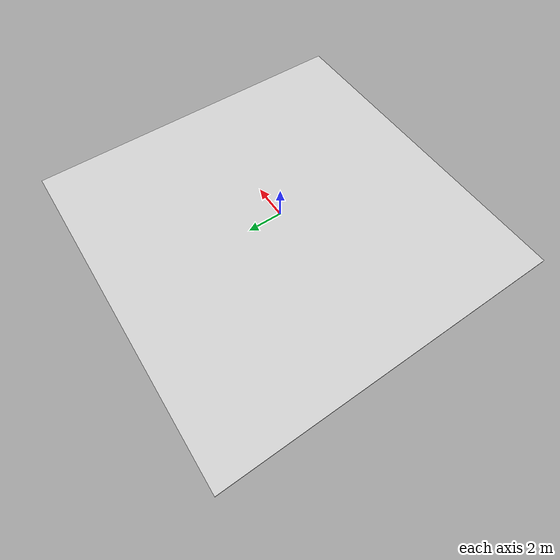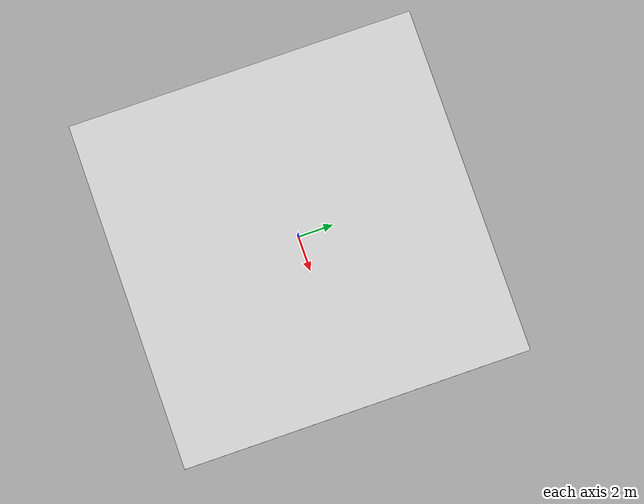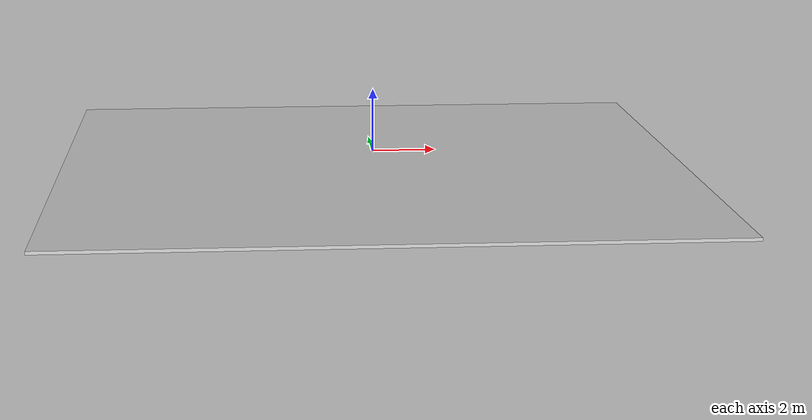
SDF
<?xml version="1.0"?>
<!--
  You can echo lidar messages using:
    ign topic -e -t /lidar
-->
<sdf version="1.8">
  <world name="empty_world">
    <physics name="1ms" type="ignored">
      <max_step_size>0.001</max_step_size>
      <real_time_factor>1.0</real_time_factor>
    </physics>
    <plugin filename="libignition-gazebo-physics-system.so" name="ignition::gazebo::systems::Physics"></plugin>
    <plugin filename="libignition-gazebo-sensors-system.so" name="ignition::gazebo::systems::Sensors">
      <render_engine>ogre2</render_engine>
    </plugin>
    <plugin filename="libignition-gazebo-scene-broadcaster-system.so" name="ignition::gazebo::systems::SceneBroadcaster"></plugin>
    <plugin filename="ignition-gazebo-user-commands-system" name="ignition::gazebo::systems::UserCommands"></plugin>

    <gui fullscreen="0">

      <!-- 3D scene -->
      <plugin filename="MinimalScene" name="3D View">
        <ignition-gui>
          <title>3D View</title>
          <property type="bool" key="showTitleBar">false</property>
          <property type="string" key="state">docked</property>
        </ignition-gui>

        <engine>ogre2</engine>
        <scene>scene</scene>
        <ambient_light>0.4 0.4 0.4</ambient_light>
        <background_color>0.8 0.8 0.8</background_color>
        <camera_pose>-6 0 6 0 0.5 0</camera_pose>
      </plugin>

      <!-- Plugins that add functionality to the scene -->
      <plugin filename="EntityContextMenuPlugin" name="Entity context menu">
        <ignition-gui>
          <property key="state" type="string">floating</property>
          <property key="width" type="double">5</property>
          <property key="height" type="double">5</property>
          <property key="showTitleBar" type="bool">false</property>
        </ignition-gui>
      </plugin>
      <plugin filename="GzSceneManager" name="Scene Manager">
        <ignition-gui>
          <property key="resizable" type="bool">false</property>
          <property key="width" type="double">5</property>
          <property key="height" type="double">5</property>
          <property key="state" type="string">floating</property>
          <property key="showTitleBar" type="bool">false</property>
        </ignition-gui>
      </plugin>
      <plugin filename="InteractiveViewControl" name="Interactive view control">
        <ignition-gui>
          <property key="resizable" type="bool">false</property>
          <property key="width" type="double">5</property>
          <property key="height" type="double">5</property>
          <property key="state" type="string">floating</property>
          <property key="showTitleBar" type="bool">false</property>
        </ignition-gui>
      </plugin>
      <plugin filename="CameraTracking" name="Camera Tracking">
        <ignition-gui>
          <property key="resizable" type="bool">false</property>
          <property key="width" type="double">5</property>
          <property key="height" type="double">5</property>
          <property key="state" type="string">floating</property>
          <property key="showTitleBar" type="bool">false</property>
        </ignition-gui>
      </plugin>
      <!-- World control -->
      <plugin filename="WorldControl" name="World control">
        <ignition-gui>
          <title>World control</title>
          <property type="bool" key="showTitleBar">false</property>
          <property type="bool" key="resizable">false</property>
          <property type="double" key="height">72</property>
          <property type="double" key="width">121</property>
          <property type="double" key="z">1</property>

          <property type="string" key="state">floating</property>
          <anchors target="3D View">
            <line own="left" target="left" />
            <line own="bottom" target="bottom" />
          </anchors>
        </ignition-gui>

        <play_pause>true</play_pause>
        <step>true</step>
        <start_paused>true</start_paused>

      </plugin>

      <!-- World statistics -->
      <plugin filename="WorldStats" name="World stats">
        <ignition-gui>
          <title>World stats</title>
          <property type="bool" key="showTitleBar">false</property>
          <property type="bool" key="resizable">false</property>
          <property type="double" key="height">110</property>
          <property type="double" key="width">290</property>
          <property type="double" key="z">1</property>

          <property type="string" key="state">floating</property>
          <anchors target="3D View">
            <line own="right" target="right" />
            <line own="bottom" target="bottom" />
          </anchors>
        </ignition-gui>

        <sim_time>true</sim_time>
        <real_time>true</real_time>
        <real_time_factor>true</real_time_factor>
        <iterations>true</iterations>
      </plugin>

      <plugin filename="VisualizeLidar" name="Visualize Lidar"></plugin>

      <!-- Inspector -->
      <plugin filename="ComponentInspector" name="Component inspector">
        <ignition-gui>
          <property type="string" key="state">docked</property>
        </ignition-gui>

        <!-- Visualization Capabilities -->
      </plugin>
      <plugin filename="VisualizationCapabilities" name="Visualization Capabilities">
        <ignition-gui>
          <property type="string" key="state">docked</property>
        </ignition-gui>
      </plugin>

      <!-- Entity tree -->
      <plugin filename="EntityTree" name="Entity tree">
        <ignition-gui>
          <property type="string" key="state">docked</property>
        </ignition-gui>
      </plugin>

      <!-- Teleop-->
      <plugin filename="Teleop" name="Teleop">
        <ignition-gui>
          <property key="x" type="double">0</property>
          <property key="y" type="double">0</property>
          <property key="width" type="double">400</property>
          <property key="height" type="double">900</property>
          <property key="state" type="string">docked</property>
        </ignition-gui>
      <topic>/model/rmf_owl/cmd_vel</topic>
      </plugin>

    </gui>

    <light type="directional" name="sun">
      <cast_shadows>true</cast_shadows>
      <pose>0 0 10 0 0 0</pose>
      <diffuse>0.8 0.8 0.8 1</diffuse>
      <specular>0.2 0.2 0.2 1</specular>
      <attenuation>
        <range>1000</range>
        <constant>0.9</constant>
        <linear>0.01</linear>
        <quadratic>0.001</quadratic>
      </attenuation>
      <direction>-0.5 0.1 -0.9</direction>
    </light>

    <model name="ground_plane">
      <static>true</static>
      <link name="link">
        <pose>0 0 -0.5 0 0 0</pose>
        <collision name="collision">
          <geometry>
            <box>
              <size>50 50 0.1</size>
            </box>
          </geometry>
        </collision>
        <visual name="visual">
          <geometry>
            <box>
              <size>20 20 0.1</size>
            </box>
          </geometry>
          <material>
            <ambient>0.8 0.8 0.8 1</ambient>
            <diffuse>0.8 0.8 0.8 1</diffuse>
            <specular>0.8 0.8 0.8 1</specular>
          </material>
        </visual>
      </link>
    </model>

  </world>
</sdf>
